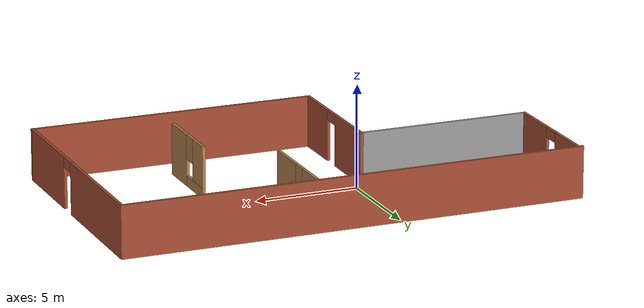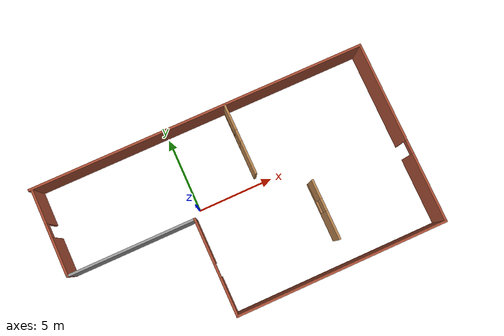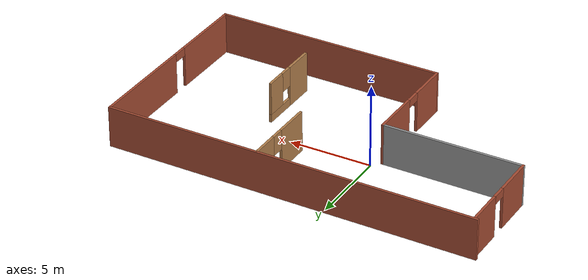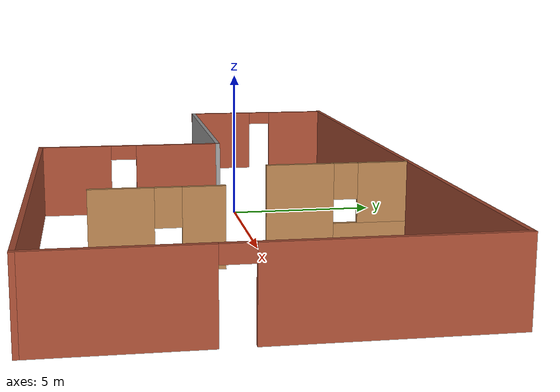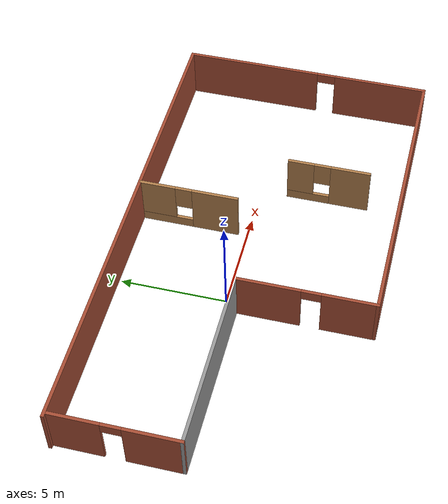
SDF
<?xml version='1.0'?>
<sdf version='1.6'>
  <model name='mybuilding'>
    <pose frame=''>2.21929 -0.84958 0 0 -0 0</pose>
    <link name='Wall_10'>
      <pose frame=''>11.175 0 0 0 0 -1.5708</pose>
      <visual name='Wall_10_Visual_0'>
        <pose frame=''>-2.77238 0 1.25 0 -0 0</pose>
        <geometry>
          <box>
            <size>6.70523 0.15 2.5</size>
          </box>
        </geometry>
        <material>
          <script>
            <uri>file://media/materials/scripts/gazebo.material</uri>
            <name>Gazebo/Bricks</name>
          </script>
          <ambient>1 1 1 1</ambient>
        </material>
        <meta>
          <layer>0</layer>
        </meta>
      </visual>
      <collision name='Wall_10_Collision_0'>
        <geometry>
          <box>
            <size>6.70523 0.15 2.5</size>
          </box>
        </geometry>
        <pose frame=''>-2.77238 0 1.25 0 -0 0</pose>
      </collision>
      <visual name='Wall_10_Visual_1'>
        <pose frame=''>3.80261 0 1.25 0 -0 0</pose>
        <geometry>
          <box>
            <size>4.64477 0.15 2.5</size>
          </box>
        </geometry>
        <material>
          <script>
            <uri>file://media/materials/scripts/gazebo.material</uri>
            <name>Gazebo/Bricks</name>
          </script>
          <ambient>1 1 1 1</ambient>
        </material>
        <meta>
          <layer>0</layer>
        </meta>
      </visual>
      <collision name='Wall_10_Collision_1'>
        <geometry>
          <box>
            <size>4.64477 0.15 2.5</size>
          </box>
        </geometry>
        <pose frame=''>3.80261 0 1.25 0 -0 0</pose>
      </collision>
      <visual name='Wall_10_Visual_2'>
        <pose frame=''>1.03023 0 2.25 0 -0 0</pose>
        <geometry>
          <box>
            <size>0.9 0.15 0.5</size>
          </box>
        </geometry>
        <material>
          <script>
            <uri>file://media/materials/scripts/gazebo.material</uri>
            <name>Gazebo/Bricks</name>
          </script>
          <ambient>1 1 1 1</ambient>
        </material>
        <meta>
          <layer>0</layer>
        </meta>
      </visual>
      <collision name='Wall_10_Collision_2'>
        <geometry>
          <box>
            <size>0.9 0.15 0.5</size>
          </box>
        </geometry>
        <pose frame=''>1.03023 0 2.25 0 -0 0</pose>
      </collision>
    </link>
    <link name='Wall_11'>
      <collision name='Wall_11_Collision'>
        <geometry>
          <box>
            <size>14 0.15 2.5</size>
          </box>
        </geometry>
        <pose frame=''>0 0 1.25 0 -0 0</pose>
      </collision>
      <visual name='Wall_11_Visual'>
        <pose frame=''>0 0 1.25 0 -0 0</pose>
        <geometry>
          <box>
            <size>14 0.15 2.5</size>
          </box>
        </geometry>
        <material>
          <script>
            <uri>file://media/materials/scripts/gazebo.material</uri>
            <name>Gazebo/Bricks</name>
          </script>
          <ambient>1 1 1 1</ambient>
        </material>
        <meta>
          <layer>0</layer>
        </meta>
      </visual>
      <pose frame=''>4.25 -6.05 0 0 -0 3.14159</pose>
    </link>
    <link name='Wall_12'>
      <pose frame=''>-2.675 -2.875 0 0 -0 1.5708</pose>
      <visual name='Wall_12_Visual_0'>
        <pose frame=''>-1.97224 0 1.25 0 -0 0</pose>
        <geometry>
          <box>
            <size>2.55552 0.15 2.5</size>
          </box>
        </geometry>
        <material>
          <script>
            <uri>file://media/materials/scripts/gazebo.material</uri>
            <name>Gazebo/Bricks</name>
          </script>
          <ambient>1 1 1 1</ambient>
        </material>
        <meta>
          <layer>0</layer>
        </meta>
      </visual>
      <collision name='Wall_12_Collision_0'>
        <geometry>
          <box>
            <size>2.55552 0.15 2.5</size>
          </box>
        </geometry>
        <pose frame=''>-1.97224 0 1.25 0 -0 0</pose>
      </collision>
      <visual name='Wall_12_Visual_1'>
        <pose frame=''>1.72776 0 1.25 0 -0 0</pose>
        <geometry>
          <box>
            <size>3.04448 0.15 2.5</size>
          </box>
        </geometry>
        <material>
          <script>
            <uri>file://media/materials/scripts/gazebo.material</uri>
            <name>Gazebo/Bricks</name>
          </script>
          <ambient>1 1 1 1</ambient>
        </material>
        <meta>
          <layer>0</layer>
        </meta>
      </visual>
      <collision name='Wall_12_Collision_1'>
        <geometry>
          <box>
            <size>3.04448 0.15 2.5</size>
          </box>
        </geometry>
        <pose frame=''>1.72776 0 1.25 0 -0 0</pose>
      </collision>
      <visual name='Wall_12_Visual_2'>
        <pose frame=''>-0.244478 0 2.25 0 -0 0</pose>
        <geometry>
          <box>
            <size>0.9 0.15 0.5</size>
          </box>
        </geometry>
        <material>
          <script>
            <uri>file://media/materials/scripts/gazebo.material</uri>
            <name>Gazebo/Bricks</name>
          </script>
          <ambient>1 1 1 1</ambient>
        </material>
        <meta>
          <layer>0</layer>
        </meta>
      </visual>
      <collision name='Wall_12_Collision_2'>
        <geometry>
          <box>
            <size>0.9 0.15 0.5</size>
          </box>
        </geometry>
        <pose frame=''>-0.244478 0 2.25 0 -0 0</pose>
      </collision>
    </link>
    <link name='Wall_13'>
      <collision name='Wall_13_Collision'>
        <geometry>
          <box>
            <size>8.5 0.15 2.5</size>
          </box>
        </geometry>
        <pose frame=''>0 0 1.25 0 -0 0</pose>
      </collision>
      <visual name='Wall_13_Visual'>
        <pose frame=''>0 0 1.25 0 -0 0</pose>
        <geometry>
          <box>
            <size>8.5 0.15 2.5</size>
          </box>
        </geometry>
        <material>
          <script>
            <uri>file://media/materials/scripts/gazebo.material</uri>
            <name>Gazebo/Grey</name>
          </script>
          <ambient>1 1 1 1</ambient>
        </material>
        <meta>
          <layer>0</layer>
        </meta>
      </visual>
      <pose frame=''>-6.85 0.3 0 0 -0 3.14159</pose>
    </link>
    <link name='Wall_14'>
      <pose frame=''>-11.025 3.1 0 0 -0 1.5708</pose>
      <visual name='Wall_14_Visual_0'>
        <pose frame=''>-1.58033 0 1.25 0 -0 0</pose>
        <geometry>
          <box>
            <size>2.58934 0.15 2.5</size>
          </box>
        </geometry>
        <material>
          <script>
            <uri>file://media/materials/scripts/gazebo.material</uri>
            <name>Gazebo/Bricks</name>
          </script>
          <ambient>1 1 1 1</ambient>
        </material>
        <meta>
          <layer>0</layer>
        </meta>
      </visual>
      <collision name='Wall_14_Collision_0'>
        <geometry>
          <box>
            <size>2.58934 0.15 2.5</size>
          </box>
        </geometry>
        <pose frame=''>-1.58033 0 1.25 0 -0 0</pose>
      </collision>
      <visual name='Wall_14_Visual_1'>
        <pose frame=''>1.74467 0 1.25 0 -0 0</pose>
        <geometry>
          <box>
            <size>2.26066 0.15 2.5</size>
          </box>
        </geometry>
        <material>
          <script>
            <uri>file://media/materials/scripts/gazebo.material</uri>
            <name>Gazebo/Bricks</name>
          </script>
          <ambient>1 1 1 1</ambient>
        </material>
        <meta>
          <layer>0</layer>
        </meta>
      </visual>
      <collision name='Wall_14_Collision_1'>
        <geometry>
          <box>
            <size>2.26066 0.15 2.5</size>
          </box>
        </geometry>
        <pose frame=''>1.74467 0 1.25 0 -0 0</pose>
      </collision>
      <visual name='Wall_14_Visual_2'>
        <pose frame=''>0.164336 0 2.25 0 -0 0</pose>
        <geometry>
          <box>
            <size>0.9 0.15 0.5</size>
          </box>
        </geometry>
        <material>
          <script>
            <uri>file://media/materials/scripts/gazebo.material</uri>
            <name>Gazebo/Bricks</name>
          </script>
          <ambient>1 1 1 1</ambient>
        </material>
        <meta>
          <layer>0</layer>
        </meta>
      </visual>
      <collision name='Wall_14_Collision_2'>
        <geometry>
          <box>
            <size>0.9 0.15 0.5</size>
          </box>
        </geometry>
        <pose frame=''>0.164336 0 2.25 0 -0 0</pose>
      </collision>
    </link>
    <link name='Wall_16'>
      <pose frame=''>1.86346 3.66854 0 0 -0 1.5708</pose>
      <visual name='Wall_16_Visual_0'>
        <pose frame=''>-1.26074 0 1.25 0 -0 0</pose>
        <geometry>
          <box>
            <size>2.22852 0.15 2.5</size>
          </box>
        </geometry>
        <material>
          <script>
            <uri>file://media/materials/scripts/gazebo.material</uri>
            <name>Gazebo/Wood</name>
          </script>
          <ambient>1 1 1 1</ambient>
        </material>
        <meta>
          <layer>0</layer>
        </meta>
      </visual>
      <collision name='Wall_16_Collision_0'>
        <geometry>
          <box>
            <size>2.22852 0.15 2.5</size>
          </box>
        </geometry>
        <pose frame=''>-1.26074 0 1.25 0 -0 0</pose>
      </collision>
      <visual name='Wall_16_Visual_1'>
        <pose frame=''>1.11426 0 0.25 0 -0 0</pose>
        <geometry>
          <box>
            <size>2.52148 0.15 0.5</size>
          </box>
        </geometry>
        <material>
          <script>
            <uri>file://media/materials/scripts/gazebo.material</uri>
            <name>Gazebo/Wood</name>
          </script>
          <ambient>1 1 1 1</ambient>
        </material>
        <meta>
          <layer>0</layer>
        </meta>
      </visual>
      <collision name='Wall_16_Collision_1'>
        <geometry>
          <box>
            <size>2.52148 0.15 0.5</size>
          </box>
        </geometry>
        <pose frame=''>1.11426 0 0.25 0 -0 0</pose>
      </collision>
      <visual name='Wall_16_Visual_2'>
        <pose frame=''>1.51426 0 1.5 0 -0 0</pose>
        <geometry>
          <box>
            <size>1.72148 0.15 2</size>
          </box>
        </geometry>
        <material>
          <script>
            <uri>file://media/materials/scripts/gazebo.material</uri>
            <name>Gazebo/Wood</name>
          </script>
          <ambient>1 1 1 1</ambient>
        </material>
        <meta>
          <layer>0</layer>
        </meta>
      </visual>
      <collision name='Wall_16_Collision_2'>
        <geometry>
          <box>
            <size>1.72148 0.15 2</size>
          </box>
        </geometry>
        <pose frame=''>1.51426 0 1.5 0 -0 0</pose>
      </collision>
      <visual name='Wall_16_Visual_3'>
        <pose frame=''>0.253525 0 1.9 0 -0 0</pose>
        <geometry>
          <box>
            <size>0.8 0.15 1.2</size>
          </box>
        </geometry>
        <material>
          <script>
            <uri>file://media/materials/scripts/gazebo.material</uri>
            <name>Gazebo/Wood</name>
          </script>
          <ambient>1 1 1 1</ambient>
        </material>
        <meta>
          <layer>0</layer>
        </meta>
      </visual>
      <collision name='Wall_16_Collision_3'>
        <geometry>
          <box>
            <size>0.8 0.15 1.2</size>
          </box>
        </geometry>
        <pose frame=''>0.253525 0 1.9 0 -0 0</pose>
      </collision>
    </link>
    <link name='Wall_18'>
      <pose frame=''>4.84257 -2.43255 0 0 -0 1.5708</pose>
      <visual name='Wall_18_Visual_0'>
        <pose frame=''>-1.0405 0 1.25 0 -0 0</pose>
        <geometry>
          <box>
            <size>1.91901 0.15 2.5</size>
          </box>
        </geometry>
        <material>
          <script>
            <uri>file://media/materials/scripts/gazebo.material</uri>
            <name>Gazebo/Wood</name>
          </script>
          <ambient>1 1 1 1</ambient>
        </material>
        <meta>
          <layer>0</layer>
        </meta>
      </visual>
      <collision name='Wall_18_Collision_0'>
        <geometry>
          <box>
            <size>1.91901 0.15 2.5</size>
          </box>
        </geometry>
        <pose frame=''>-1.0405 0 1.25 0 -0 0</pose>
      </collision>
      <visual name='Wall_18_Visual_1'>
        <pose frame=''>0.959504 0 0.25 0 -0 0</pose>
        <geometry>
          <box>
            <size>2.08099 0.15 0.5</size>
          </box>
        </geometry>
        <material>
          <script>
            <uri>file://media/materials/scripts/gazebo.material</uri>
            <name>Gazebo/Wood</name>
          </script>
          <ambient>1 1 1 1</ambient>
        </material>
        <meta>
          <layer>0</layer>
        </meta>
      </visual>
      <collision name='Wall_18_Collision_1'>
        <geometry>
          <box>
            <size>2.08099 0.15 0.5</size>
          </box>
        </geometry>
        <pose frame=''>0.959504 0 0.25 0 -0 0</pose>
      </collision>
      <visual name='Wall_18_Visual_2'>
        <pose frame=''>1.3595 0 1.5 0 -0 0</pose>
        <geometry>
          <box>
            <size>1.28099 0.15 2</size>
          </box>
        </geometry>
        <material>
          <script>
            <uri>file://media/materials/scripts/gazebo.material</uri>
            <name>Gazebo/Wood</name>
          </script>
          <ambient>1 1 1 1</ambient>
        </material>
        <meta>
          <layer>0</layer>
        </meta>
      </visual>
      <collision name='Wall_18_Collision_2'>
        <geometry>
          <box>
            <size>1.28099 0.15 2</size>
          </box>
        </geometry>
        <pose frame=''>1.3595 0 1.5 0 -0 0</pose>
      </collision>
      <visual name='Wall_18_Visual_3'>
        <pose frame=''>0.319007 0 1.9 0 -0 0</pose>
        <geometry>
          <box>
            <size>0.8 0.15 1.2</size>
          </box>
        </geometry>
        <material>
          <script>
            <uri>file://media/materials/scripts/gazebo.material</uri>
            <name>Gazebo/Wood</name>
          </script>
          <ambient>1 1 1 1</ambient>
        </material>
        <meta>
          <layer>0</layer>
        </meta>
      </visual>
      <collision name='Wall_18_Collision_3'>
        <geometry>
          <box>
            <size>0.8 0.15 1.2</size>
          </box>
        </geometry>
        <pose frame=''>0.319007 0 1.9 0 -0 0</pose>
      </collision>
    </link>
    <link name='Wall_9'>
      <collision name='Wall_9_Collision'>
        <geometry>
          <box>
            <size>22.5 0.15 2.5</size>
          </box>
        </geometry>
        <pose frame=''>0 0 1.25 0 -0 0</pose>
      </collision>
      <visual name='Wall_9_Visual'>
        <pose frame=''>0 0 1.25 0 -0 0</pose>
        <geometry>
          <box>
            <size>22.5 0.15 2.5</size>
          </box>
        </geometry>
        <material>
          <script>
            <uri>file://media/materials/scripts/gazebo.material</uri>
            <name>Gazebo/Bricks</name>
          </script>
          <ambient>1 1 1 1</ambient>
        </material>
        <meta>
          <layer>0</layer>
        </meta>
      </visual>
      <pose frame=''>0 6.05 0 0 -0 0</pose>
    </link>
    <static>1</static>
  </model>
</sdf>
